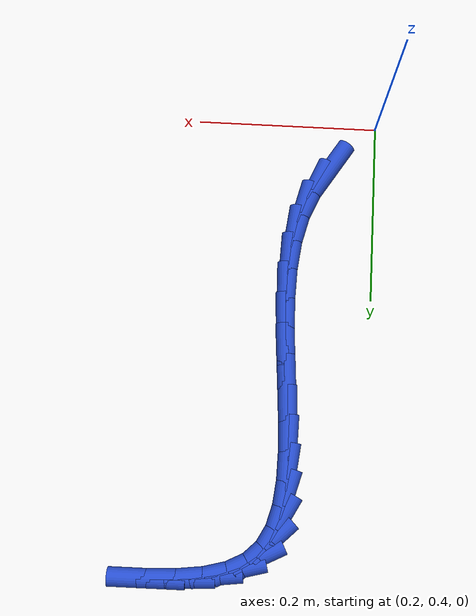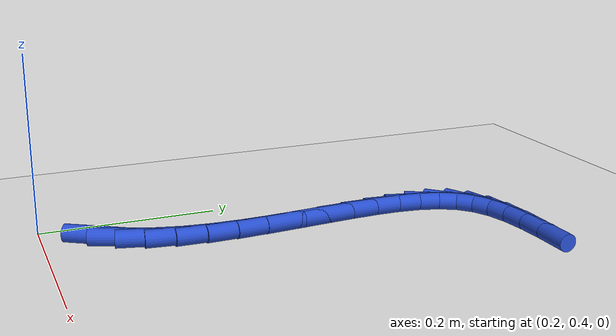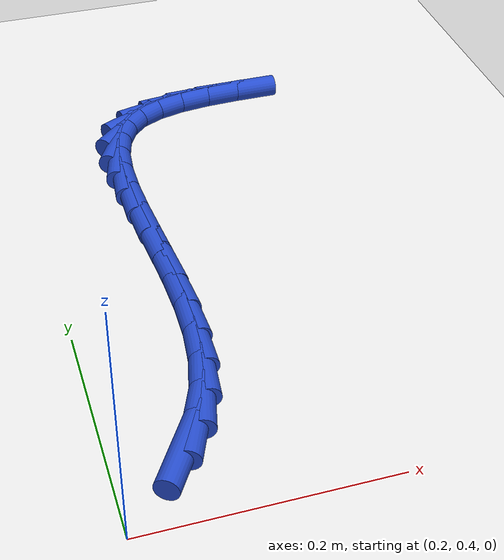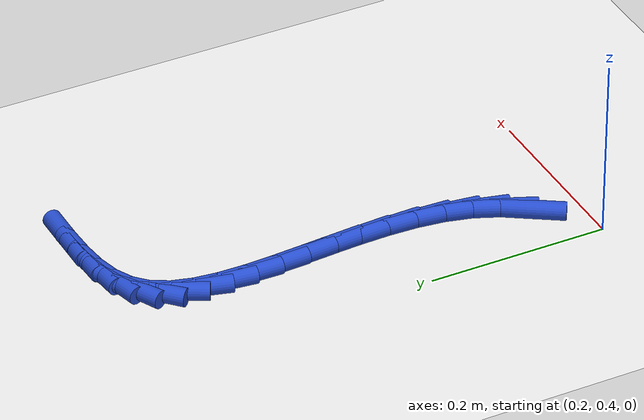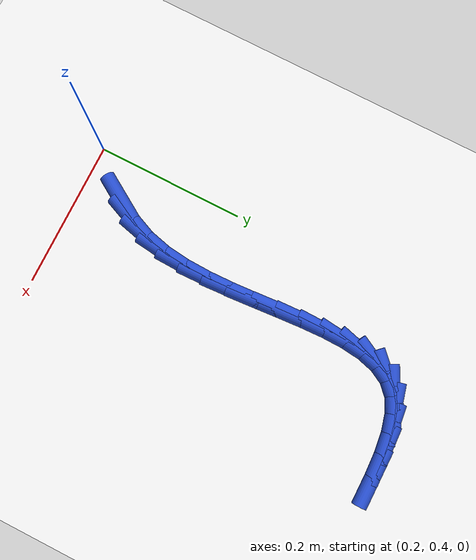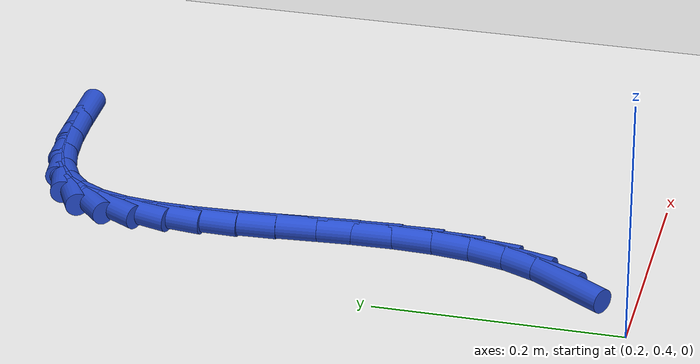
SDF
<sdf version="1.6">
 <world name="default">
  <model name="ground_plane">
   <static>1</static>
   <link name="link">
    <collision name="collision">
     <geometry><plane><normal>0 0 1</normal><size>100 100</size></plane></geometry>
     <surface><friction><ode><mu>100</mu><mu2>50</mu2></ode></friction></surface>
    </collision>
    <visual name="visual">
     <cast_shadows>0</cast_shadows>
     <geometry><plane><normal>0 0 1</normal><size>100 100</size></plane></geometry>
     <material>
      <script><uri>file://media/materials/scripts/gazebo.material</uri><name>Gazebo/WhiteGlow</name></script>
     </material>
    </visual>
   </link>
  </model>
  <model name="line">
   <link name="link_19">
    <pose>0.2542294003503243 0.4581493835142735 0.01 0 1.57 1.007251573013523</pose>
    <collision name="collision">
     <geometry><cylinder><radius>0.01</radius><length>0.08</length></cylinder></geometry>
    </collision>
    <visual name="visual">
     <material>
      <script><name>Gazebo/Blue</name><uri>file://media/materials/scripts/gazebo.material</uri></script>
     </material>
     <geometry><cylinder><radius>0.01</radius><length>0.08</length></cylinder></geometry>
    </visual>
   </link>
   <link name="link_20">
    <pose>0.2696556406453749 0.4825619072546472 0.01 0 1.57 1.1674876845816153</pose>
    <collision name="collision">
     <geometry><cylinder><radius>0.01</radius><length>0.08</length></cylinder></geometry>
    </collision>
    <visual name="visual">
     <material>
      <script><name>Gazebo/Blue</name><uri>file://media/materials/scripts/gazebo.material</uri></script>
     </material>
     <geometry><cylinder><radius>0.01</radius><length>0.08</length></cylinder></geometry>
    </visual>
   </link>
   <link name="link_21">
    <pose>0.2811425656276706 0.5094823620049455 0.01 0 1.57 1.3268752912787303</pose>
    <collision name="collision">
     <geometry><cylinder><radius>0.01</radius><length>0.08</length></cylinder></geometry>
    </collision>
    <visual name="visual">
     <material>
      <script><name>Gazebo/Blue</name><uri>file://media/materials/scripts/gazebo.material</uri></script>
     </material>
     <geometry><cylinder><radius>0.01</radius><length>0.08</length></cylinder></geometry>
    </visual>
   </link>
   <link name="link_22">
    <pose>0.28848547787156115 0.5389865950627324 0.01 0 1.57 1.4490515654149474</pose>
    <collision name="collision">
     <geometry><cylinder><radius>0.01</radius><length>0.08</length></cylinder></geometry>
    </collision>
    <visual name="visual">
     <material>
      <script><name>Gazebo/Blue</name><uri>file://media/materials/scripts/gazebo.material</uri></script>
     </material>
     <geometry><cylinder><radius>0.01</radius><length>0.08</length></cylinder></geometry>
    </visual>
   </link>
   <link name="link_23">
    <pose>0.2923463221536812 0.5705423720280268 0.01 0 1.57 1.5365369089055376</pose>
    <collision name="collision">
     <geometry><cylinder><radius>0.01</radius><length>0.08</length></cylinder></geometry>
    </collision>
    <visual name="visual">
     <material>
      <script><name>Gazebo/Blue</name><uri>file://media/materials/scripts/gazebo.material</uri></script>
     </material>
     <geometry><cylinder><radius>0.01</radius><length>0.08</length></cylinder></geometry>
    </visual>
   </link>
   <link name="link_24">
    <pose>0.293477718372949 0.6035538360715009 0.01 0 1.57 -1.545841377254358</pose>
    <collision name="collision">
     <geometry><cylinder><radius>0.01</radius><length>0.08</length></cylinder></geometry>
    </collision>
    <visual name="visual">
     <material>
      <script><name>Gazebo/Blue</name><uri>file://media/materials/scripts/gazebo.material</uri></script>
     </material>
     <geometry><cylinder><radius>0.01</radius><length>0.08</length></cylinder></geometry>
    </visual>
   </link>
   <link name="link_25">
    <pose>0.29263228642828265 0.6374251303638271 0.01 0 1.57 -1.5102399027851348</pose>
    <collision name="collision">
     <geometry><cylinder><radius>0.01</radius><length>0.08</length></cylinder></geometry>
    </collision>
    <visual name="visual">
     <material>
      <script><name>Gazebo/Blue</name><uri>file://media/materials/scripts/gazebo.material</uri></script>
     </material>
     <geometry><cylinder><radius>0.01</radius><length>0.08</length></cylinder></geometry>
    </visual>
   </link>
   <link name="link_26">
    <pose>0.29056264621860056 0.6715603980756771 0.01 0 1.57 -1.4957607199147311</pose>
    <collision name="collision">
     <geometry><cylinder><radius>0.01</radius><length>0.08</length></cylinder></geometry>
    </collision>
    <visual name="visual">
     <material>
      <script><name>Gazebo/Blue</name><uri>file://media/materials/scripts/gazebo.material</uri></script>
     </material>
     <geometry><cylinder><radius>0.01</radius><length>0.08</length></cylinder></geometry>
    </visual>
   </link>
   <link name="link_27">
    <pose>0.28802141764282096 0.7053637823777239 0.01 0 1.57 -1.5021544432532707</pose>
    <collision name="collision">
     <geometry><cylinder><radius>0.01</radius><length>0.08</length></cylinder></geometry>
    </collision>
    <visual name="visual">
     <material>
      <script><name>Gazebo/Blue</name><uri>file://media/materials/scripts/gazebo.material</uri></script>
     </material>
     <geometry><cylinder><radius>0.01</radius><length>0.08</length></cylinder></geometry>
    </visual>
   </link>
   <link name="link_28">
    <pose>0.28576122059986186 0.7382394264406389 0.01 0 1.57 -1.531694559708363</pose>
    <collision name="collision">
     <geometry><cylinder><radius>0.01</radius><length>0.08</length></cylinder></geometry>
    </collision>
    <visual name="visual">
     <material>
      <script><name>Gazebo/Blue</name><uri>file://media/materials/scripts/gazebo.material</uri></script>
     </material>
     <geometry><cylinder><radius>0.01</radius><length>0.08</length></cylinder></geometry>
    </visual>
   </link>
   <link name="link_29">
    <pose>0.28453467498864166 0.7695914734350949 0.01 0 1.57 1.5516513494587065</pose>
    <collision name="collision">
     <geometry><cylinder><radius>0.01</radius><length>0.08</length></cylinder></geometry>
    </collision>
    <visual name="visual">
     <material>
      <script><name>Gazebo/Blue</name><uri>file://media/materials/scripts/gazebo.material</uri></script>
     </material>
     <geometry><cylinder><radius>0.01</radius><length>0.08</length></cylinder></geometry>
    </visual>
   </link>
   <link name="link_30">
    <pose>0.2850944007080785 0.7988240665317639 0.01 0 1.57 1.4544711348709467</pose>
    <collision name="collision">
     <geometry><cylinder><radius>0.01</radius><length>0.08</length></cylinder></geometry>
    </collision>
    <visual name="visual">
     <material>
      <script><name>Gazebo/Blue</name><uri>file://media/materials/scripts/gazebo.material</uri></script>
     </material>
     <geometry><cylinder><radius>0.01</radius><length>0.08</length></cylinder></geometry>
    </visual>
   </link>
   <link name="link_31">
    <pose>0.2881930176570907 0.8253413489013182 0.01 0 1.57 1.3020917603939037</pose>
    <collision name="collision">
     <geometry><cylinder><radius>0.01</radius><length>0.08</length></cylinder></geometry>
    </collision>
    <visual name="visual">
     <material>
      <script><name>Gazebo/Blue</name><uri>file://media/materials/scripts/gazebo.material</uri></script>
     </material>
     <geometry><cylinder><radius>0.01</radius><length>0.08</length></cylinder></geometry>
    </visual>
   </link>
   <link name="link_32">
    <pose>0.29458314573459654 0.8485474637144302 0.01 0 1.57 1.0751516940104155</pose>
    <collision name="collision">
     <geometry><cylinder><radius>0.01</radius><length>0.08</length></cylinder></geometry>
    </collision>
    <visual name="visual">
     <material>
      <script><name>Gazebo/Blue</name><uri>file://media/materials/scripts/gazebo.material</uri></script>
     </material>
     <geometry><cylinder><radius>0.01</radius><length>0.08</length></cylinder></geometry>
    </visual>
   </link>
   <link name="link_33">
    <pose>0.3050174048395141 0.8678465541417721 0.01 0 1.57 0.7715371925944774</pose>
    <collision name="collision">
     <geometry><cylinder><radius>0.01</radius><length>0.08</length></cylinder></geometry>
    </collision>
    <visual name="visual">
     <material>
      <script><name>Gazebo/Blue</name><uri>file://media/materials/scripts/gazebo.material</uri></script>
     </material>
     <geometry><cylinder><radius>0.01</radius><length>0.08</length></cylinder></geometry>
    </visual>
   </link>
   <link name="link_34">
    <pose>0.32023883371235595 0.882651758077651 0.01 0 1.57 0.4701615558088562</pose>
    <collision name="collision">
     <geometry><cylinder><radius>0.01</radius><length>0.08</length></cylinder></geometry>
    </collision>
    <visual name="visual">
     <material>
      <script><name>Gazebo/Blue</name><uri>file://media/materials/scripts/gazebo.material</uri></script>
     </material>
     <geometry><cylinder><radius>0.01</radius><length>0.08</length></cylinder></geometry>
    </visual>
   </link>
   <link name="link_35">
    <pose>0.3404231537281818 0.8929088069400194 0.01 0 1.57 0.2589463208538392</pose>
    <collision name="collision">
     <geometry><cylinder><radius>0.01</radius><length>0.08</length></cylinder></geometry>
    </collision>
    <visual name="visual">
     <material>
      <script><name>Gazebo/Blue</name><uri>file://media/materials/scripts/gazebo.material</uri></script>
     </material>
     <geometry><cylinder><radius>0.01</radius><length>0.08</length></cylinder></geometry>
    </visual>
   </link>
   <link name="link_36">
    <pose>0.36487105955257165 0.8993849010227423 0.01 0 1.57 0.1257769986528519</pose>
    <collision name="collision">
     <geometry><cylinder><radius>0.01</radius><length>0.08</length></cylinder></geometry>
    </collision>
    <visual name="visual">
     <material>
      <script><name>Gazebo/Blue</name><uri>file://media/materials/scripts/gazebo.material</uri></script>
     </material>
     <geometry><cylinder><radius>0.01</radius><length>0.08</length></cylinder></geometry>
    </visual>
   </link>
   <link name="link_37">
    <pose>0.39280847683553327 0.9029174332418181 0.01 0 1.57 0.04649926190605071</pose>
    <collision name="collision">
     <geometry><cylinder><radius>0.01</radius><length>0.08</length></cylinder></geometry>
    </collision>
    <visual name="visual">
     <material>
      <script><name>Gazebo/Blue</name><uri>file://media/materials/scripts/gazebo.material</uri></script>
     </material>
     <geometry><cylinder><radius>0.01</radius><length>0.08</length></cylinder></geometry>
    </visual>
   </link>
   <link name="link_38">
    <pose>0.42346133122707397 0.9043437965132447 0.01 0 1.57 0.004834784378300426</pose>
    <collision name="collision">
     <geometry><cylinder><radius>0.01</radius><length>0.08</length></cylinder></geometry>
    </collision>
    <visual name="visual">
     <material>
      <script><name>Gazebo/Blue</name><uri>file://media/materials/scripts/gazebo.material</uri></script>
     </material>
     <geometry><cylinder><radius>0.01</radius><length>0.08</length></cylinder></geometry>
    </visual>
   </link>
  </model>
 </world>
</sdf>
